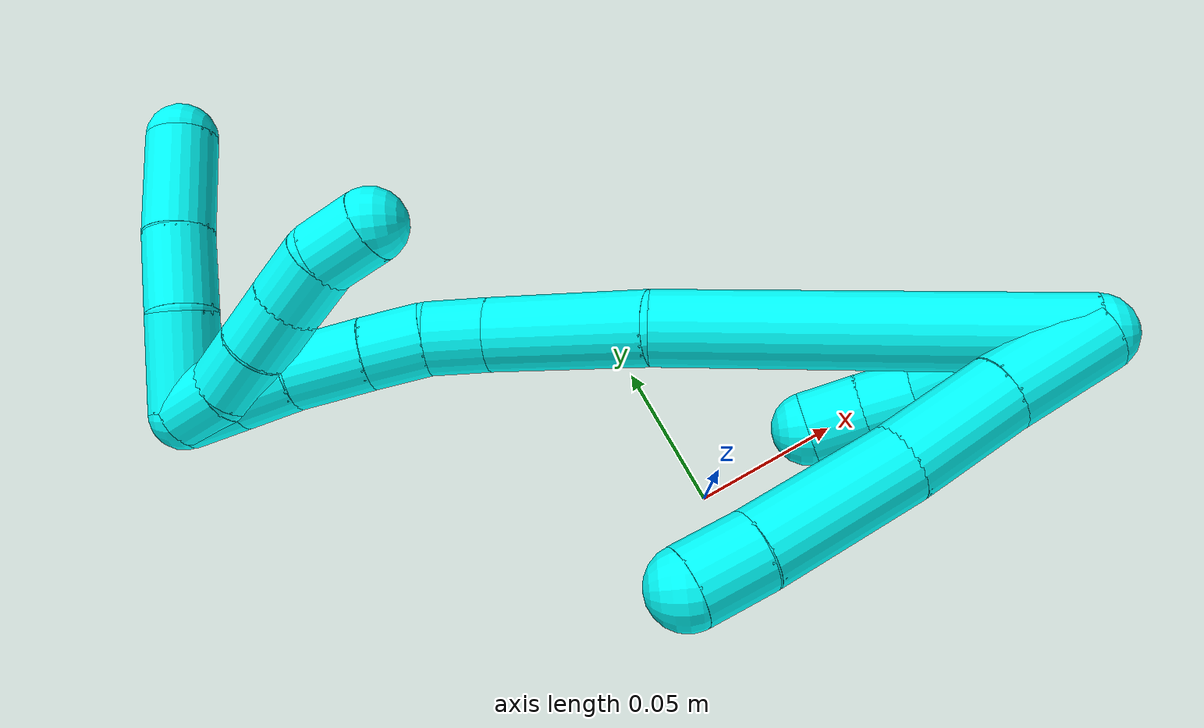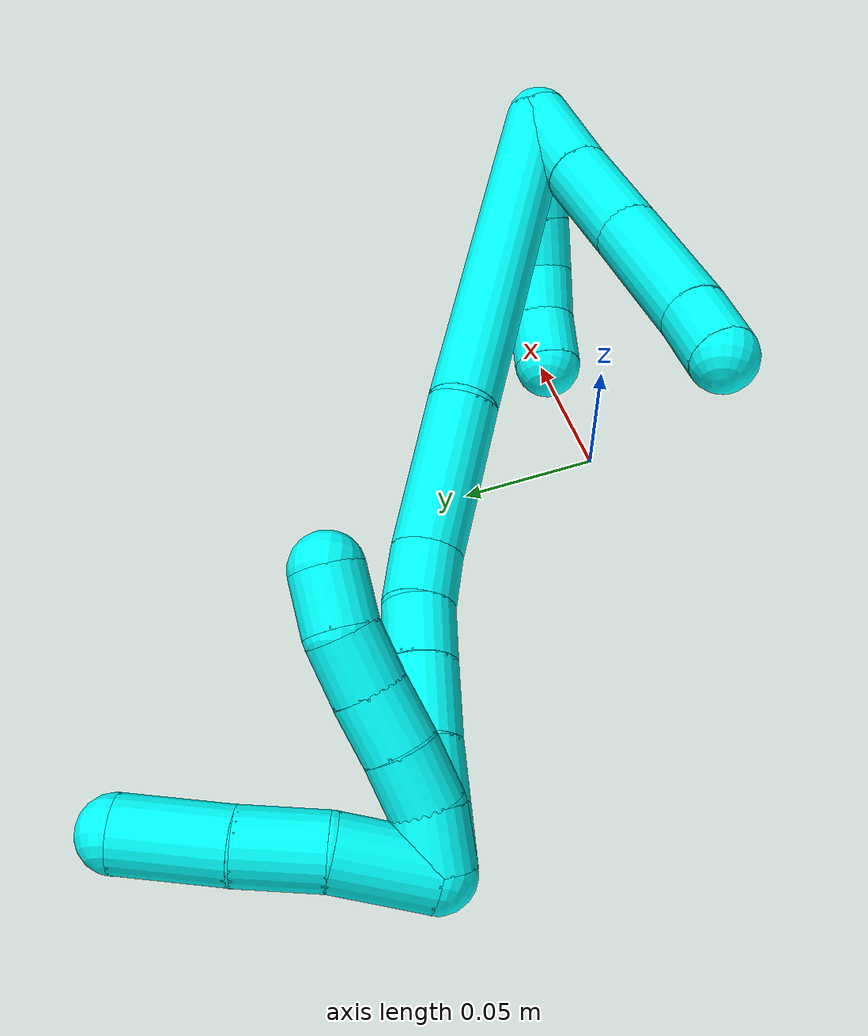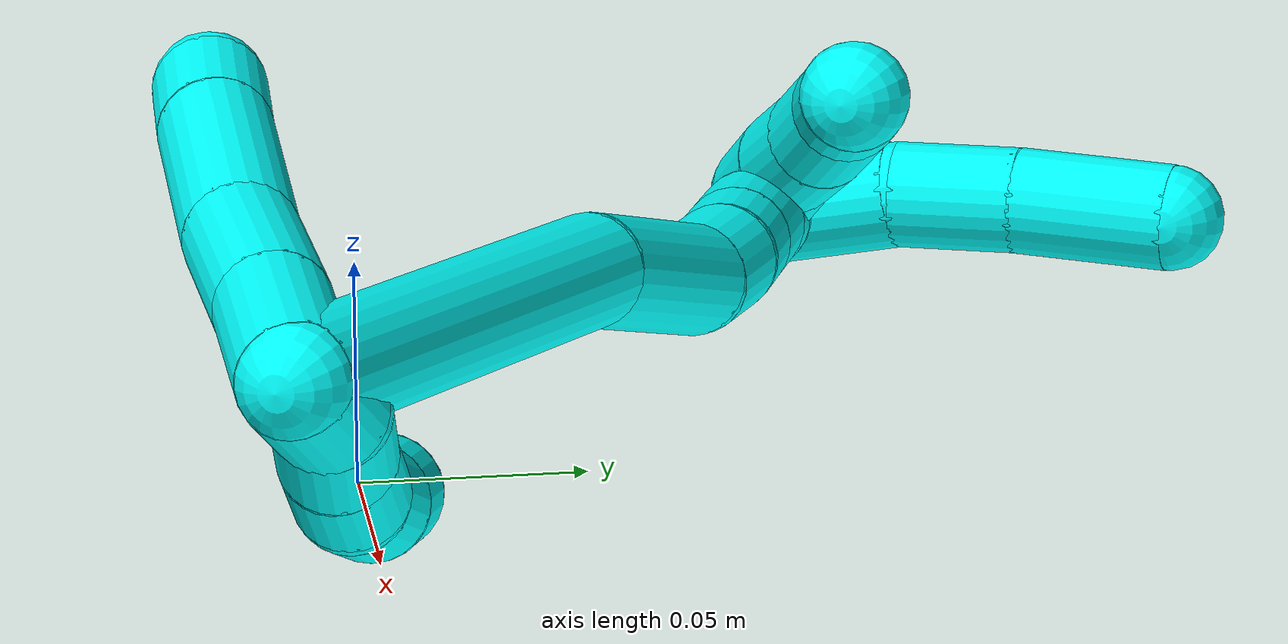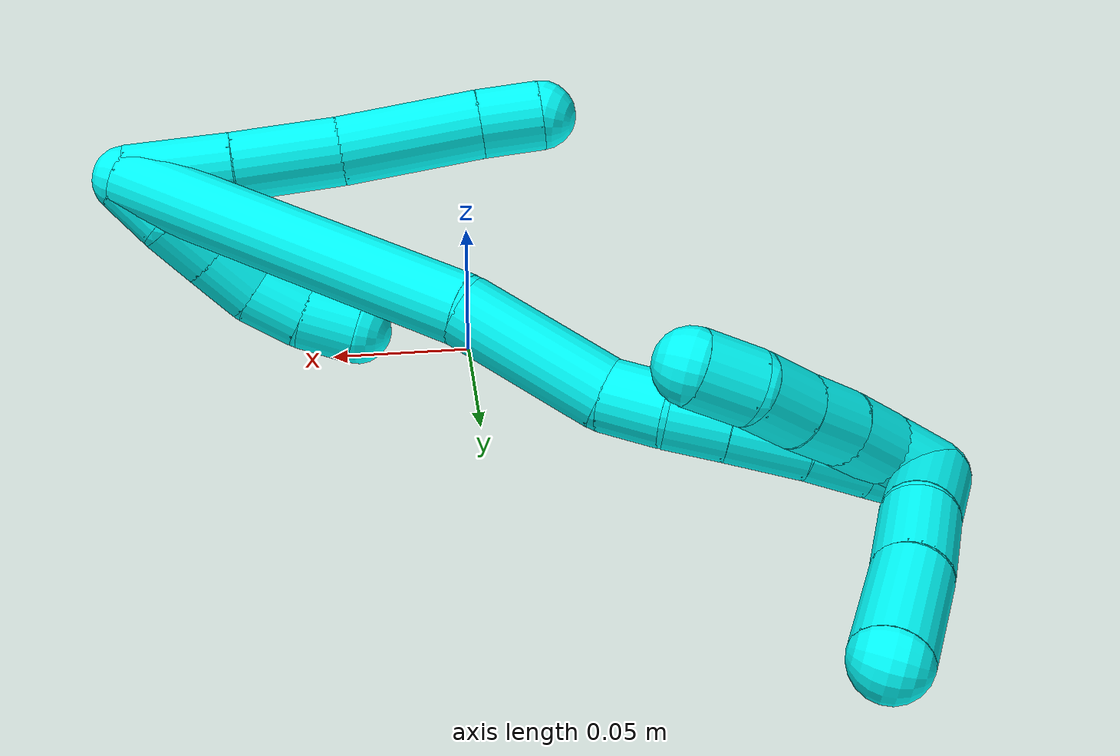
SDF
<sdf version="1.7">
 <world name="default">
  <model name="3">
   <static>0</static>
   <link name="3">
    <collision name="collision-cylinder-e_1_2_8">
     <pose>0.003934 -0.008045 0.016584 0.451659 0.210285 0.048482</pose>
     <geometry><cylinder><radius>0.0125</radius><length>0.037695</length></cylinder></geometry>
     <surface>
      <friction><ode><mu>1.16</mu><mu2>1.16</mu2><slip1>0</slip1><slip2>0</slip2></ode></friction>
      <contact><ode><kp>1e+06</kp><kd>1</kd><max_vel>0</max_vel><min_depth>0.001</min_depth></ode></contact>
     </surface>
    </collision>
    <visual name="visual-cylinder-e_1_2_8">
     <pose>0.003934 -0.008045 0.016584 0.451659 0.210285 0.048482</pose>
     <geometry><cylinder><radius>0.0125</radius><length>0.037695</length></cylinder></geometry>
     <material><ambient>0.003922 1 0.996078 1</ambient></material>
    </visual>
    <collision name="collision-cylinder-e_2_8_9">
     <pose>0.012017 -0.025111 0.049688 0.499846 0.216963 0.055586</pose>
     <geometry><cylinder><radius>0.0125</radius><length>0.038548</length></cylinder></geometry>
     <surface>
      <friction><ode><mu>1.16</mu><mu2>1.16</mu2><slip1>0</slip1><slip2>0</slip2></ode></friction>
      <contact><ode><kp>1e+06</kp><kd>1</kd><max_vel>0</max_vel><min_depth>0.001</min_depth></ode></contact>
     </surface>
    </collision>
    <visual name="visual-cylinder-e_2_8_9">
     <pose>0.012017 -0.025111 0.049688 0.499846 0.216963 0.055586</pose>
     <geometry><cylinder><radius>0.0125</radius><length>0.038548</length></cylinder></geometry>
     <material><ambient>0.003922 1 0.996078 1</ambient></material>
    </visual>
    <collision name="collision-cylinder-e_3_9_10">
     <pose>0.02354 -0.044507 0.088492 0.435685 0.291413 0.064943</pose>
     <geometry><cylinder><radius>0.0125</radius><length>0.051327</length></cylinder></geometry>
     <surface>
      <friction><ode><mu>1.16</mu><mu2>1.16</mu2><slip1>0</slip1><slip2>0</slip2></ode></friction>
      <contact><ode><kp>1e+06</kp><kd>1</kd><max_vel>0</max_vel><min_depth>0.001</min_depth></ode></contact>
     </surface>
    </collision>
    <visual name="visual-cylinder-e_3_9_10">
     <pose>0.02354 -0.044507 0.088492 0.435685 0.291413 0.064943</pose>
     <geometry><cylinder><radius>0.0125</radius><length>0.051327</length></cylinder></geometry>
     <material><ambient>0.003922 1 0.996078 1</ambient></material>
    </visual>
    <collision name="collision-cylinder-e_4_10_6">
     <pose>0.033779 -0.058981 0.120815 0.38778 0.258403 0.051012</pose>
     <geometry><cylinder><radius>0.0125</radius><length>0.022429</length></cylinder></geometry>
     <surface>
      <friction><ode><mu>1.16</mu><mu2>1.16</mu2><slip1>0</slip1><slip2>0</slip2></ode></friction>
      <contact><ode><kp>1e+06</kp><kd>1</kd><max_vel>0</max_vel><min_depth>0.001</min_depth></ode></contact>
     </surface>
    </collision>
    <visual name="visual-cylinder-e_4_10_6">
     <pose>0.033779 -0.058981 0.120815 0.38778 0.258403 0.051012</pose>
     <geometry><cylinder><radius>0.0125</radius><length>0.022429</length></cylinder></geometry>
     <material><ambient>0.003922 1 0.996078 1</ambient></material>
    </visual>
    <collision name="collision-cylinder-e_1_2_11">
     <pose>-0.005438 -5.5e-05 0.008392 0.006612 -0.574912 -0.001955</pose>
     <geometry><cylinder><radius>0.0125</radius><length>0.02</length></cylinder></geometry>
     <surface>
      <friction><ode><mu>1.16</mu><mu2>1.16</mu2><slip1>0</slip1><slip2>0</slip2></ode></friction>
      <contact><ode><kp>1e+06</kp><kd>1</kd><max_vel>0</max_vel><min_depth>0.001</min_depth></ode></contact>
     </surface>
    </collision>
    <visual name="visual-cylinder-e_1_2_11">
     <pose>-0.005438 -5.5e-05 0.008392 0.006612 -0.574912 -0.001955</pose>
     <geometry><cylinder><radius>0.0125</radius><length>0.02</length></cylinder></geometry>
     <material><ambient>0.003922 1 0.996078 1</ambient></material>
    </visual>
    <collision name="collision-cylinder-e_2_11_12">
     <pose>-0.016912 -0.002695 0.024326 0.330094 -0.648122 -0.111781</pose>
     <geometry><cylinder><radius>0.0125</radius><length>0.02</length></cylinder></geometry>
     <surface>
      <friction><ode><mu>1.16</mu><mu2>1.16</mu2><slip1>0</slip1><slip2>0</slip2></ode></friction>
      <contact><ode><kp>1e+06</kp><kd>1</kd><max_vel>0</max_vel><min_depth>0.001</min_depth></ode></contact>
     </surface>
    </collision>
    <visual name="visual-cylinder-e_2_11_12">
     <pose>-0.016912 -0.002695 0.024326 0.330094 -0.648122 -0.111781</pose>
     <geometry><cylinder><radius>0.0125</radius><length>0.02</length></cylinder></geometry>
     <material><ambient>0.003922 1 0.996078 1</ambient></material>
    </visual>
    <collision name="collision-cylinder-e_3_12_13">
     <pose>-0.028629 -0.007243 0.039861 0.240903 -0.604063 -0.075386</pose>
     <geometry><cylinder><radius>0.0125</radius><length>0.02</length></cylinder></geometry>
     <surface>
      <friction><ode><mu>1.16</mu><mu2>1.16</mu2><slip1>0</slip1><slip2>0</slip2></ode></friction>
      <contact><ode><kp>1e+06</kp><kd>1</kd><max_vel>0</max_vel><min_depth>0.001</min_depth></ode></contact>
     </surface>
    </collision>
    <visual name="visual-cylinder-e_3_12_13">
     <pose>-0.028629 -0.007243 0.039861 0.240903 -0.604063 -0.075386</pose>
     <geometry><cylinder><radius>0.0125</radius><length>0.02</length></cylinder></geometry>
     <material><ambient>0.003922 1 0.996078 1</ambient></material>
    </visual>
    <collision name="collision-cylinder-e_4_13_14">
     <pose>-0.037412 -0.010687 0.057244 0.156378 -0.31556 -0.02493</pose>
     <geometry><cylinder><radius>0.0125</radius><length>0.02</length></cylinder></geometry>
     <surface>
      <friction><ode><mu>1.16</mu><mu2>1.16</mu2><slip1>0</slip1><slip2>0</slip2></ode></friction>
      <contact><ode><kp>1e+06</kp><kd>1</kd><max_vel>0</max_vel><min_depth>0.001</min_depth></ode></contact>
     </surface>
    </collision>
    <visual name="visual-cylinder-e_4_13_14">
     <pose>-0.037412 -0.010687 0.057244 0.156378 -0.31556 -0.02493</pose>
     <geometry><cylinder><radius>0.0125</radius><length>0.02</length></cylinder></geometry>
     <material><ambient>0.003922 1 0.996078 1</ambient></material>
    </visual>
    <collision name="collision-cylinder-e_5_14_5">
     <pose>-0.041758 -0.014187 0.076349 0.204962 -0.124496 -0.01282</pose>
     <geometry><cylinder><radius>0.0125</radius><length>0.02</length></cylinder></geometry>
     <surface>
      <friction><ode><mu>1.16</mu><mu2>1.16</mu2><slip1>0</slip1><slip2>0</slip2></ode></friction>
      <contact><ode><kp>1e+06</kp><kd>1</kd><max_vel>0</max_vel><min_depth>0.001</min_depth></ode></contact>
     </surface>
    </collision>
    <visual name="visual-cylinder-e_5_14_5">
     <pose>-0.041758 -0.014187 0.076349 0.204962 -0.124496 -0.01282</pose>
     <geometry><cylinder><radius>0.0125</radius><length>0.02</length></cylinder></geometry>
     <material><ambient>0.003922 1 0.996078 1</ambient></material>
    </visual>
    <collision name="collision-cylinder-e_1_2_15">
     <pose>-0.003405 0.008809 0.067297 -0.130157 -0.05013 0.003268</pose>
     <geometry><cylinder><radius>0.0125</radius><length>0.135913</length></cylinder></geometry>
     <surface>
      <friction><ode><mu>1.16</mu><mu2>1.16</mu2><slip1>0</slip1><slip2>0</slip2></ode></friction>
      <contact><ode><kp>1e+06</kp><kd>1</kd><max_vel>0</max_vel><min_depth>0.001</min_depth></ode></contact>
     </surface>
    </collision>
    <visual name="visual-cylinder-e_1_2_15">
     <pose>-0.003405 0.008809 0.067297 -0.130157 -0.05013 0.003268</pose>
     <geometry><cylinder><radius>0.0125</radius><length>0.135913</length></cylinder></geometry>
     <material><ambient>0.003922 1 0.996078 1</ambient></material>
    </visual>
    <collision name="collision-cylinder-e_2_15_16">
     <pose>-0.013566 0.020593 0.161271 -0.111063 -0.246543 0.013775</pose>
     <geometry><cylinder><radius>0.0125</radius><length>0.055359</length></cylinder></geometry>
     <surface>
      <friction><ode><mu>1.16</mu><mu2>1.16</mu2><slip1>0</slip1><slip2>0</slip2></ode></friction>
      <contact><ode><kp>1e+06</kp><kd>1</kd><max_vel>0</max_vel><min_depth>0.001</min_depth></ode></contact>
     </surface>
    </collision>
    <visual name="visual-cylinder-e_2_15_16">
     <pose>-0.013566 0.020593 0.161271 -0.111063 -0.246543 0.013775</pose>
     <geometry><cylinder><radius>0.0125</radius><length>0.055359</length></cylinder></geometry>
     <material><ambient>0.003922 1 0.996078 1</ambient></material>
    </visual>
    <collision name="collision-cylinder-e_3_16_17">
     <pose>-0.020083 0.023989 0.198537 -0.039705 0.022498 -0.000447</pose>
     <geometry><cylinder><radius>0.0125</radius><length>0.021198</length></cylinder></geometry>
     <surface>
      <friction><ode><mu>1.16</mu><mu2>1.16</mu2><slip1>0</slip1><slip2>0</slip2></ode></friction>
      <contact><ode><kp>1e+06</kp><kd>1</kd><max_vel>0</max_vel><min_depth>0.001</min_depth></ode></contact>
     </surface>
    </collision>
    <visual name="visual-cylinder-e_3_16_17">
     <pose>-0.020083 0.023989 0.198537 -0.039705 0.022498 -0.000447</pose>
     <geometry><cylinder><radius>0.0125</radius><length>0.021198</length></cylinder></geometry>
     <material><ambient>0.003922 1 0.996078 1</ambient></material>
    </visual>
    <collision name="collision-cylinder-e_4_17_18">
     <pose>-0.019971 0.023019 0.21929 0.135939 -0.012382 -0.000843</pose>
     <geometry><cylinder><radius>0.0125</radius><length>0.020521</length></cylinder></geometry>
     <surface>
      <friction><ode><mu>1.16</mu><mu2>1.16</mu2><slip1>0</slip1><slip2>0</slip2></ode></friction>
      <contact><ode><kp>1e+06</kp><kd>1</kd><max_vel>0</max_vel><min_depth>0.001</min_depth></ode></contact>
     </surface>
    </collision>
    <visual name="visual-cylinder-e_4_17_18">
     <pose>-0.019971 0.023019 0.21929 0.135939 -0.012382 -0.000843</pose>
     <geometry><cylinder><radius>0.0125</radius><length>0.020521</length></cylinder></geometry>
     <material><ambient>0.003922 1 0.996078 1</ambient></material>
    </visual>
    <collision name="collision-cylinder-e_5_18_19">
     <pose>-0.020562 0.019618 0.242553 0.152339 -0.034949 -0.002667</pose>
     <geometry><cylinder><radius>0.0125</radius><length>0.026519</length></cylinder></geometry>
     <surface>
      <friction><ode><mu>1.16</mu><mu2>1.16</mu2><slip1>0</slip1><slip2>0</slip2></ode></friction>
      <contact><ode><kp>1e+06</kp><kd>1</kd><max_vel>0</max_vel><min_depth>0.001</min_depth></ode></contact>
     </surface>
    </collision>
    <visual name="visual-cylinder-e_5_18_19">
     <pose>-0.020562 0.019618 0.242553 0.152339 -0.034949 -0.002667</pose>
     <geometry><cylinder><radius>0.0125</radius><length>0.026519</length></cylinder></geometry>
     <material><ambient>0.003922 1 0.996078 1</ambient></material>
    </visual>
    <collision name="collision-cylinder-e_6_19_20">
     <pose>-0.022307 0.015439 0.265508 0.21646 -0.12638 -0.01375</pose>
     <geometry><cylinder><radius>0.0125</radius><length>0.020347</length></cylinder></geometry>
     <surface>
      <friction><ode><mu>1.16</mu><mu2>1.16</mu2><slip1>0</slip1><slip2>0</slip2></ode></friction>
      <contact><ode><kp>1e+06</kp><kd>1</kd><max_vel>0</max_vel><min_depth>0.001</min_depth></ode></contact>
     </surface>
    </collision>
    <visual name="visual-cylinder-e_6_19_20">
     <pose>-0.022307 0.015439 0.265508 0.21646 -0.12638 -0.01375</pose>
     <geometry><cylinder><radius>0.0125</radius><length>0.020347</length></cylinder></geometry>
     <material><ambient>0.003922 1 0.996078 1</ambient></material>
    </visual>
    <collision name="collision-cylinder-e_7_20_1">
     <pose>-0.02476 0.011122 0.285134 0.216626 -0.116486 -0.012681</pose>
     <geometry><cylinder><radius>0.0125</radius><length>0.020142</length></cylinder></geometry>
     <surface>
      <friction><ode><mu>1.16</mu><mu2>1.16</mu2><slip1>0</slip1><slip2>0</slip2></ode></friction>
      <contact><ode><kp>1e+06</kp><kd>1</kd><max_vel>0</max_vel><min_depth>0.001</min_depth></ode></contact>
     </surface>
    </collision>
    <visual name="visual-cylinder-e_7_20_1">
     <pose>-0.02476 0.011122 0.285134 0.216626 -0.116486 -0.012681</pose>
     <geometry><cylinder><radius>0.0125</radius><length>0.020142</length></cylinder></geometry>
     <material><ambient>0.003922 1 0.996078 1</ambient></material>
    </visual>
    <collision name="collision-cylinder-e_1_1_21">
     <pose>-0.021883 0.011929 0.28625 -2.81227 0.416737 -1.80945</pose>
     <geometry><cylinder><radius>0.0125</radius><length>0.02</length></cylinder></geometry>
     <surface>
      <friction><ode><mu>1.16</mu><mu2>1.16</mu2><slip1>0</slip1><slip2>0</slip2></ode></friction>
      <contact><ode><kp>1e+06</kp><kd>1</kd><max_vel>0</max_vel><min_depth>0.001</min_depth></ode></contact>
     </surface>
    </collision>
    <visual name="visual-cylinder-e_1_1_21">
     <pose>-0.021883 0.011929 0.28625 -2.81227 0.416737 -1.80945</pose>
     <geometry><cylinder><radius>0.0125</radius><length>0.02</length></cylinder></geometry>
     <material><ambient>0.003922 1 0.996078 1</ambient></material>
    </visual>
    <collision name="collision-cylinder-e_2_21_22">
     <pose>-0.013148 0.020345 0.270653 -2.47539 0.487854 -1.24715</pose>
     <geometry><cylinder><radius>0.0125</radius><length>0.02</length></cylinder></geometry>
     <surface>
      <friction><ode><mu>1.16</mu><mu2>1.16</mu2><slip1>0</slip1><slip2>0</slip2></ode></friction>
      <contact><ode><kp>1e+06</kp><kd>1</kd><max_vel>0</max_vel><min_depth>0.001</min_depth></ode></contact>
     </surface>
    </collision>
    <visual name="visual-cylinder-e_2_21_22">
     <pose>-0.013148 0.020345 0.270653 -2.47539 0.487854 -1.24715</pose>
     <geometry><cylinder><radius>0.0125</radius><length>0.02</length></cylinder></geometry>
     <material><ambient>0.003922 1 0.996078 1</ambient></material>
    </visual>
    <collision name="collision-cylinder-e_3_22_23">
     <pose>-0.004424 0.031711 0.256721 -2.43982 0.415453 -1.04489</pose>
     <geometry><cylinder><radius>0.0125</radius><length>0.02</length></cylinder></geometry>
     <surface>
      <friction><ode><mu>1.16</mu><mu2>1.16</mu2><slip1>0</slip1><slip2>0</slip2></ode></friction>
      <contact><ode><kp>1e+06</kp><kd>1</kd><max_vel>0</max_vel><min_depth>0.001</min_depth></ode></contact>
     </surface>
    </collision>
    <visual name="visual-cylinder-e_3_22_23">
     <pose>-0.004424 0.031711 0.256721 -2.43982 0.415453 -1.04489</pose>
     <geometry><cylinder><radius>0.0125</radius><length>0.02</length></cylinder></geometry>
     <material><ambient>0.003922 1 0.996078 1</ambient></material>
    </visual>
    <collision name="collision-cylinder-e_4_23_24">
     <pose>0.004079 0.043105 0.242668 -2.48125 0.463131 -1.20528</pose>
     <geometry><cylinder><radius>0.0125</radius><length>0.02</length></cylinder></geometry>
     <surface>
      <friction><ode><mu>1.16</mu><mu2>1.16</mu2><slip1>0</slip1><slip2>0</slip2></ode></friction>
      <contact><ode><kp>1e+06</kp><kd>1</kd><max_vel>0</max_vel><min_depth>0.001</min_depth></ode></contact>
     </surface>
    </collision>
    <visual name="visual-cylinder-e_4_23_24">
     <pose>0.004079 0.043105 0.242668 -2.48125 0.463131 -1.20528</pose>
     <geometry><cylinder><radius>0.0125</radius><length>0.02</length></cylinder></geometry>
     <material><ambient>0.003922 1 0.996078 1</ambient></material>
    </visual>
    <collision name="collision-cylinder-e_5_24_4">
     <pose>0.011273 0.052228 0.226694 -2.75412 0.276076 -1.23225</pose>
     <geometry><cylinder><radius>0.0125</radius><length>0.02</length></cylinder></geometry>
     <surface>
      <friction><ode><mu>1.16</mu><mu2>1.16</mu2><slip1>0</slip1><slip2>0</slip2></ode></friction>
      <contact><ode><kp>1e+06</kp><kd>1</kd><max_vel>0</max_vel><min_depth>0.001</min_depth></ode></contact>
     </surface>
    </collision>
    <visual name="visual-cylinder-e_5_24_4">
     <pose>0.011273 0.052228 0.226694 -2.75412 0.276076 -1.23225</pose>
     <geometry><cylinder><radius>0.0125</radius><length>0.02</length></cylinder></geometry>
     <material><ambient>0.003922 1 0.996078 1</ambient></material>
    </visual>
    <collision name="collision-cylinder-e_1_1_25">
     <pose>-0.024299 0.025837 0.294255 -1.60918 0.096389 -0.100156</pose>
     <geometry><cylinder><radius>0.0125</radius><length>0.033913</length></cylinder></geometry>
     <surface>
      <friction><ode><mu>1.16</mu><mu2>1.16</mu2><slip1>0</slip1><slip2>0</slip2></ode></friction>
      <contact><ode><kp>1e+06</kp><kd>1</kd><max_vel>0</max_vel><min_depth>0.001</min_depth></ode></contact>
     </surface>
    </collision>
    <visual name="visual-cylinder-e_1_1_25">
     <pose>-0.024299 0.025837 0.294255 -1.60918 0.096389 -0.100156</pose>
     <geometry><cylinder><radius>0.0125</radius><length>0.033913</length></cylinder></geometry>
     <material><ambient>0.003922 1 0.996078 1</ambient></material>
    </visual>
    <collision name="collision-cylinder-e_2_25_26">
     <pose>-0.024103 0.057236 0.294198 -1.53021 -0.098418 0.094509</pose>
     <geometry><cylinder><radius>0.0125</radius><length>0.029232</length></cylinder></geometry>
     <surface>
      <friction><ode><mu>1.16</mu><mu2>1.16</mu2><slip1>0</slip1><slip2>0</slip2></ode></friction>
      <contact><ode><kp>1e+06</kp><kd>1</kd><max_vel>0</max_vel><min_depth>0.001</min_depth></ode></contact>
     </surface>
    </collision>
    <visual name="visual-cylinder-e_2_25_26">
     <pose>-0.024103 0.057236 0.294198 -1.53021 -0.098418 0.094509</pose>
     <geometry><cylinder><radius>0.0125</radius><length>0.029232</length></cylinder></geometry>
     <material><ambient>0.003922 1 0.996078 1</ambient></material>
    </visual>
    <collision name="collision-cylinder-e_3_26_3">
     <pose>-0.028231 0.089995 0.294436 -1.59007 -0.146636 0.149479</pose>
     <geometry><cylinder><radius>0.0125</radius><length>0.036855</length></cylinder></geometry>
     <surface>
      <friction><ode><mu>1.16</mu><mu2>1.16</mu2><slip1>0</slip1><slip2>0</slip2></ode></friction>
      <contact><ode><kp>1e+06</kp><kd>1</kd><max_vel>0</max_vel><min_depth>0.001</min_depth></ode></contact>
     </surface>
    </collision>
    <visual name="visual-cylinder-e_3_26_3">
     <pose>-0.028231 0.089995 0.294436 -1.59007 -0.146636 0.149479</pose>
     <geometry><cylinder><radius>0.0125</radius><length>0.036855</length></cylinder></geometry>
     <material><ambient>0.003922 1 0.996078 1</ambient></material>
    </visual>
    <collision name="collision-sphere-3">
     <pose>-0.030924 0.108222 0.294085 0 -0 0</pose>
     <geometry><sphere><radius>0.0125</radius></sphere></geometry>
     <surface>
      <friction><ode><mu>1.16</mu><mu2>1.16</mu2><slip1>0</slip1><slip2>0</slip2></ode></friction>
      <contact><ode><kp>1e+06</kp><kd>1</kd><max_vel>0</max_vel><min_depth>0.001</min_depth></ode></contact>
     </surface>
    </collision>
    <visual name="visual-sphere-3">
     <pose>-0.030924 0.108222 0.294085 0 -0 0</pose>
     <geometry><sphere><radius>0.0125</radius></sphere></geometry>
     <material><ambient>0.003922 1 0.996078 1</ambient></material>
    </visual>
    <collision name="collision-sphere-26">
     <pose>-0.025539 0.071769 0.294788 0 -0 0</pose>
     <geometry><sphere><radius>0.0125</radius></sphere></geometry>
     <surface>
      <friction><ode><mu>1.16</mu><mu2>1.16</mu2><slip1>0</slip1><slip2>0</slip2></ode></friction>
      <contact><ode><kp>1e+06</kp><kd>1</kd><max_vel>0</max_vel><min_depth>0.001</min_depth></ode></contact>
     </surface>
    </collision>
    <visual name="visual-sphere-26">
     <pose>-0.025539 0.071769 0.294788 0 -0 0</pose>
     <geometry><sphere><radius>0.0125</radius></sphere></geometry>
     <material><ambient>0.003922 1 0.996078 1</ambient></material>
    </visual>
    <collision name="collision-sphere-25">
     <pose>-0.022667 0.042703 0.293607 0 -0 0</pose>
     <geometry><sphere><radius>0.0125</radius></sphere></geometry>
     <surface>
      <friction><ode><mu>1.16</mu><mu2>1.16</mu2><slip1>0</slip1><slip2>0</slip2></ode></friction>
      <contact><ode><kp>1e+06</kp><kd>1</kd><max_vel>0</max_vel><min_depth>0.001</min_depth></ode></contact>
     </surface>
    </collision>
    <visual name="visual-sphere-25">
     <pose>-0.022667 0.042703 0.293607 0 -0 0</pose>
     <geometry><sphere><radius>0.0125</radius></sphere></geometry>
     <material><ambient>0.003922 1 0.996078 1</ambient></material>
    </visual>
    <collision name="collision-sphere-4">
     <pose>0.013998 0.055864 0.217786 0 -0 0</pose>
     <geometry><sphere><radius>0.0125</radius></sphere></geometry>
     <surface>
      <friction><ode><mu>1.16</mu><mu2>1.16</mu2><slip1>0</slip1><slip2>0</slip2></ode></friction>
      <contact><ode><kp>1e+06</kp><kd>1</kd><max_vel>0</max_vel><min_depth>0.001</min_depth></ode></contact>
     </surface>
    </collision>
    <visual name="visual-sphere-4">
     <pose>0.013998 0.055864 0.217786 0 -0 0</pose>
     <geometry><sphere><radius>0.0125</radius></sphere></geometry>
     <material><ambient>0.003922 1 0.996078 1</ambient></material>
    </visual>
    <collision name="collision-sphere-24">
     <pose>0.008547 0.048593 0.235602 0 -0 0</pose>
     <geometry><sphere><radius>0.0125</radius></sphere></geometry>
     <surface>
      <friction><ode><mu>1.16</mu><mu2>1.16</mu2><slip1>0</slip1><slip2>0</slip2></ode></friction>
      <contact><ode><kp>1e+06</kp><kd>1</kd><max_vel>0</max_vel><min_depth>0.001</min_depth></ode></contact>
     </surface>
    </collision>
    <visual name="visual-sphere-24">
     <pose>0.008547 0.048593 0.235602 0 -0 0</pose>
     <geometry><sphere><radius>0.0125</radius></sphere></geometry>
     <material><ambient>0.003922 1 0.996078 1</ambient></material>
    </visual>
    <collision name="collision-sphere-23">
     <pose>-0.000388 0.037617 0.249734 0 -0 0</pose>
     <geometry><sphere><radius>0.0125</radius></sphere></geometry>
     <surface>
      <friction><ode><mu>1.16</mu><mu2>1.16</mu2><slip1>0</slip1><slip2>0</slip2></ode></friction>
      <contact><ode><kp>1e+06</kp><kd>1</kd><max_vel>0</max_vel><min_depth>0.001</min_depth></ode></contact>
     </surface>
    </collision>
    <visual name="visual-sphere-23">
     <pose>-0.000388 0.037617 0.249734 0 -0 0</pose>
     <geometry><sphere><radius>0.0125</radius></sphere></geometry>
     <material><ambient>0.003922 1 0.996078 1</ambient></material>
    </visual>
    <collision name="collision-sphere-22">
     <pose>-0.00846 0.025804 0.263708 0 -0 0</pose>
     <geometry><sphere><radius>0.0125</radius></sphere></geometry>
     <surface>
      <friction><ode><mu>1.16</mu><mu2>1.16</mu2><slip1>0</slip1><slip2>0</slip2></ode></friction>
      <contact><ode><kp>1e+06</kp><kd>1</kd><max_vel>0</max_vel><min_depth>0.001</min_depth></ode></contact>
     </surface>
    </collision>
    <visual name="visual-sphere-22">
     <pose>-0.00846 0.025804 0.263708 0 -0 0</pose>
     <geometry><sphere><radius>0.0125</radius></sphere></geometry>
     <material><ambient>0.003922 1 0.996078 1</ambient></material>
    </visual>
    <collision name="collision-sphere-21">
     <pose>-0.017835 0.014886 0.277597 0 -0 0</pose>
     <geometry><sphere><radius>0.0125</radius></sphere></geometry>
     <surface>
      <friction><ode><mu>1.16</mu><mu2>1.16</mu2><slip1>0</slip1><slip2>0</slip2></ode></friction>
      <contact><ode><kp>1e+06</kp><kd>1</kd><max_vel>0</max_vel><min_depth>0.001</min_depth></ode></contact>
     </surface>
    </collision>
    <visual name="visual-sphere-21">
     <pose>-0.017835 0.014886 0.277597 0 -0 0</pose>
     <geometry><sphere><radius>0.0125</radius></sphere></geometry>
     <material><ambient>0.003922 1 0.996078 1</ambient></material>
    </visual>
    <collision name="collision-sphere-1">
     <pose>-0.025931 0.008972 0.294903 0 -0 0</pose>
     <geometry><sphere><radius>0.0125</radius></sphere></geometry>
     <surface>
      <friction><ode><mu>1.16</mu><mu2>1.16</mu2><slip1>0</slip1><slip2>0</slip2></ode></friction>
      <contact><ode><kp>1e+06</kp><kd>1</kd><max_vel>0</max_vel><min_depth>0.001</min_depth></ode></contact>
     </surface>
    </collision>
    <visual name="visual-sphere-1">
     <pose>-0.025931 0.008972 0.294903 0 -0 0</pose>
     <geometry><sphere><radius>0.0125</radius></sphere></geometry>
     <material><ambient>0.003922 1 0.996078 1</ambient></material>
    </visual>
    <collision name="collision-sphere-11">
     <pose>-0.010875 -0.000111 0.016784 0 -0 0</pose>
     <geometry><sphere><radius>0.0125</radius></sphere></geometry>
     <surface>
      <friction><ode><mu>1.16</mu><mu2>1.16</mu2><slip1>0</slip1><slip2>0</slip2></ode></friction>
      <contact><ode><kp>1e+06</kp><kd>1</kd><max_vel>0</max_vel><min_depth>0.001</min_depth></ode></contact>
     </surface>
    </collision>
    <visual name="visual-sphere-11">
     <pose>-0.010875 -0.000111 0.016784 0 -0 0</pose>
     <geometry><sphere><radius>0.0125</radius></sphere></geometry>
     <material><ambient>0.003922 1 0.996078 1</ambient></material>
    </visual>
    <collision name="collision-sphere-6">
     <pose>0.036645 -0.063081 0.130852 0 -0 0</pose>
     <geometry><sphere><radius>0.0125</radius></sphere></geometry>
     <surface>
      <friction><ode><mu>1.16</mu><mu2>1.16</mu2><slip1>0</slip1><slip2>0</slip2></ode></friction>
      <contact><ode><kp>1e+06</kp><kd>1</kd><max_vel>0</max_vel><min_depth>0.001</min_depth></ode></contact>
     </surface>
    </collision>
    <visual name="visual-sphere-6">
     <pose>0.036645 -0.063081 0.130852 0 -0 0</pose>
     <geometry><sphere><radius>0.0125</radius></sphere></geometry>
     <material><ambient>0.003922 1 0.996078 1</ambient></material>
    </visual>
    <collision name="collision-sphere-10">
     <pose>0.030913 -0.054881 0.110778 0 -0 0</pose>
     <geometry><sphere><radius>0.0125</radius></sphere></geometry>
     <surface>
      <friction><ode><mu>1.16</mu><mu2>1.16</mu2><slip1>0</slip1><slip2>0</slip2></ode></friction>
      <contact><ode><kp>1e+06</kp><kd>1</kd><max_vel>0</max_vel><min_depth>0.001</min_depth></ode></contact>
     </surface>
    </collision>
    <visual name="visual-sphere-10">
     <pose>0.030913 -0.054881 0.110778 0 -0 0</pose>
     <geometry><sphere><radius>0.0125</radius></sphere></geometry>
     <material><ambient>0.003922 1 0.996078 1</ambient></material>
    </visual>
    <collision name="collision-sphere-9">
     <pose>0.016166 -0.034133 0.066207 0 -0 0</pose>
     <geometry><sphere><radius>0.0125</radius></sphere></geometry>
     <surface>
      <friction><ode><mu>1.16</mu><mu2>1.16</mu2><slip1>0</slip1><slip2>0</slip2></ode></friction>
      <contact><ode><kp>1e+06</kp><kd>1</kd><max_vel>0</max_vel><min_depth>0.001</min_depth></ode></contact>
     </surface>
    </collision>
    <visual name="visual-sphere-9">
     <pose>0.016166 -0.034133 0.066207 0 -0 0</pose>
     <geometry><sphere><radius>0.0125</radius></sphere></geometry>
     <material><ambient>0.003922 1 0.996078 1</ambient></material>
    </visual>
    <collision name="collision-sphere-2">
     <geometry><sphere><radius>0.0125</radius></sphere></geometry>
     <surface>
      <friction><ode><mu>1.16</mu><mu2>1.16</mu2><slip1>0</slip1><slip2>0</slip2></ode></friction>
      <contact><ode><kp>1e+06</kp><kd>1</kd><max_vel>0</max_vel><min_depth>0.001</min_depth></ode></contact>
     </surface>
    </collision>
    <visual name="visual-sphere-2">
     <geometry><sphere><radius>0.0125</radius></sphere></geometry>
     <material><ambient>0.003922 1 0.996078 1</ambient></material>
    </visual>
    <collision name="collision-sphere-19">
     <pose>-0.021025 0.017607 0.255651 0 -0 0</pose>
     <geometry><sphere><radius>0.0125</radius></sphere></geometry>
     <surface>
      <friction><ode><mu>1.16</mu><mu2>1.16</mu2><slip1>0</slip1><slip2>0</slip2></ode></friction>
      <contact><ode><kp>1e+06</kp><kd>1</kd><max_vel>0</max_vel><min_depth>0.001</min_depth></ode></contact>
     </surface>
    </collision>
    <visual name="visual-sphere-19">
     <pose>-0.021025 0.017607 0.255651 0 -0 0</pose>
     <geometry><sphere><radius>0.0125</radius></sphere></geometry>
     <material><ambient>0.003922 1 0.996078 1</ambient></material>
    </visual>
    <collision name="collision-sphere-8">
     <pose>0.007868 -0.01609 0.033168 0 -0 0</pose>
     <geometry><sphere><radius>0.0125</radius></sphere></geometry>
     <surface>
      <friction><ode><mu>1.16</mu><mu2>1.16</mu2><slip1>0</slip1><slip2>0</slip2></ode></friction>
      <contact><ode><kp>1e+06</kp><kd>1</kd><max_vel>0</max_vel><min_depth>0.001</min_depth></ode></contact>
     </surface>
    </collision>
    <visual name="visual-sphere-8">
     <pose>0.007868 -0.01609 0.033168 0 -0 0</pose>
     <geometry><sphere><radius>0.0125</radius></sphere></geometry>
     <material><ambient>0.003922 1 0.996078 1</ambient></material>
    </visual>
    <collision name="collision-sphere-12">
     <pose>-0.022949 -0.005279 0.031868 0 -0 0</pose>
     <geometry><sphere><radius>0.0125</radius></sphere></geometry>
     <surface>
      <friction><ode><mu>1.16</mu><mu2>1.16</mu2><slip1>0</slip1><slip2>0</slip2></ode></friction>
      <contact><ode><kp>1e+06</kp><kd>1</kd><max_vel>0</max_vel><min_depth>0.001</min_depth></ode></contact>
     </surface>
    </collision>
    <visual name="visual-sphere-12">
     <pose>-0.022949 -0.005279 0.031868 0 -0 0</pose>
     <geometry><sphere><radius>0.0125</radius></sphere></geometry>
     <material><ambient>0.003922 1 0.996078 1</ambient></material>
    </visual>
    <collision name="collision-sphere-13">
     <pose>-0.034309 -0.009206 0.047853 0 -0 0</pose>
     <geometry><sphere><radius>0.0125</radius></sphere></geometry>
     <surface>
      <friction><ode><mu>1.16</mu><mu2>1.16</mu2><slip1>0</slip1><slip2>0</slip2></ode></friction>
      <contact><ode><kp>1e+06</kp><kd>1</kd><max_vel>0</max_vel><min_depth>0.001</min_depth></ode></contact>
     </surface>
    </collision>
    <visual name="visual-sphere-13">
     <pose>-0.034309 -0.009206 0.047853 0 -0 0</pose>
     <geometry><sphere><radius>0.0125</radius></sphere></geometry>
     <material><ambient>0.003922 1 0.996078 1</ambient></material>
    </visual>
    <collision name="collision-sphere-14">
     <pose>-0.040516 -0.012167 0.066634 0 -0 0</pose>
     <geometry><sphere><radius>0.0125</radius></sphere></geometry>
     <surface>
      <friction><ode><mu>1.16</mu><mu2>1.16</mu2><slip1>0</slip1><slip2>0</slip2></ode></friction>
      <contact><ode><kp>1e+06</kp><kd>1</kd><max_vel>0</max_vel><min_depth>0.001</min_depth></ode></contact>
     </surface>
    </collision>
    <visual name="visual-sphere-14">
     <pose>-0.040516 -0.012167 0.066634 0 -0 0</pose>
     <geometry><sphere><radius>0.0125</radius></sphere></geometry>
     <material><ambient>0.003922 1 0.996078 1</ambient></material>
    </visual>
    <collision name="collision-sphere-5">
     <pose>-0.042999 -0.016206 0.086064 0 -0 0</pose>
     <geometry><sphere><radius>0.0125</radius></sphere></geometry>
     <surface>
      <friction><ode><mu>1.16</mu><mu2>1.16</mu2><slip1>0</slip1><slip2>0</slip2></ode></friction>
      <contact><ode><kp>1e+06</kp><kd>1</kd><max_vel>0</max_vel><min_depth>0.001</min_depth></ode></contact>
     </surface>
    </collision>
    <visual name="visual-sphere-5">
     <pose>-0.042999 -0.016206 0.086064 0 -0 0</pose>
     <geometry><sphere><radius>0.0125</radius></sphere></geometry>
     <material><ambient>0.003922 1 0.996078 1</ambient></material>
    </visual>
    <collision name="collision-sphere-15">
     <pose>-0.00681 0.017618 0.134594 0 -0 0</pose>
     <geometry><sphere><radius>0.0125</radius></sphere></geometry>
     <surface>
      <friction><ode><mu>1.16</mu><mu2>1.16</mu2><slip1>0</slip1><slip2>0</slip2></ode></friction>
      <contact><ode><kp>1e+06</kp><kd>1</kd><max_vel>0</max_vel><min_depth>0.001</min_depth></ode></contact>
     </surface>
    </collision>
    <visual name="visual-sphere-15">
     <pose>-0.00681 0.017618 0.134594 0 -0 0</pose>
     <geometry><sphere><radius>0.0125</radius></sphere></geometry>
     <material><ambient>0.003922 1 0.996078 1</ambient></material>
    </visual>
    <collision name="collision-sphere-16">
     <pose>-0.020321 0.023568 0.187949 0 -0 0</pose>
     <geometry><sphere><radius>0.0125</radius></sphere></geometry>
     <surface>
      <friction><ode><mu>1.16</mu><mu2>1.16</mu2><slip1>0</slip1><slip2>0</slip2></ode></friction>
      <contact><ode><kp>1e+06</kp><kd>1</kd><max_vel>0</max_vel><min_depth>0.001</min_depth></ode></contact>
     </surface>
    </collision>
    <visual name="visual-sphere-16">
     <pose>-0.020321 0.023568 0.187949 0 -0 0</pose>
     <geometry><sphere><radius>0.0125</radius></sphere></geometry>
     <material><ambient>0.003922 1 0.996078 1</ambient></material>
    </visual>
    <collision name="collision-sphere-17">
     <pose>-0.019844 0.024409 0.209125 0 -0 0</pose>
     <geometry><sphere><radius>0.0125</radius></sphere></geometry>
     <surface>
      <friction><ode><mu>1.16</mu><mu2>1.16</mu2><slip1>0</slip1><slip2>0</slip2></ode></friction>
      <contact><ode><kp>1e+06</kp><kd>1</kd><max_vel>0</max_vel><min_depth>0.001</min_depth></ode></contact>
     </surface>
    </collision>
    <visual name="visual-sphere-17">
     <pose>-0.019844 0.024409 0.209125 0 -0 0</pose>
     <geometry><sphere><radius>0.0125</radius></sphere></geometry>
     <material><ambient>0.003922 1 0.996078 1</ambient></material>
    </visual>
    <collision name="collision-sphere-18">
     <pose>-0.020098 0.021628 0.229455 0 -0 0</pose>
     <geometry><sphere><radius>0.0125</radius></sphere></geometry>
     <surface>
      <friction><ode><mu>1.16</mu><mu2>1.16</mu2><slip1>0</slip1><slip2>0</slip2></ode></friction>
      <contact><ode><kp>1e+06</kp><kd>1</kd><max_vel>0</max_vel><min_depth>0.001</min_depth></ode></contact>
     </surface>
    </collision>
    <visual name="visual-sphere-18">
     <pose>-0.020098 0.021628 0.229455 0 -0 0</pose>
     <geometry><sphere><radius>0.0125</radius></sphere></geometry>
     <material><ambient>0.003922 1 0.996078 1</ambient></material>
    </visual>
    <collision name="collision-sphere-20">
     <pose>-0.02359 0.013272 0.275365 0 -0 0</pose>
     <geometry><sphere><radius>0.0125</radius></sphere></geometry>
     <surface>
      <friction><ode><mu>1.16</mu><mu2>1.16</mu2><slip1>0</slip1><slip2>0</slip2></ode></friction>
      <contact><ode><kp>1e+06</kp><kd>1</kd><max_vel>0</max_vel><min_depth>0.001</min_depth></ode></contact>
     </surface>
    </collision>
    <visual name="visual-sphere-20">
     <pose>-0.02359 0.013272 0.275365 0 -0 0</pose>
     <geometry><sphere><radius>0.0125</radius></sphere></geometry>
     <material><ambient>0.003922 1 0.996078 1</ambient></material>
    </visual>
    <inertial>
     <pose>-0.008832 0.010471 0.151156 0 -0 0</pose>
     <mass>0.75</mass>
     <inertia>
      <ixx>0.000283</ixx>
      <ixy>0</ixy>
      <ixz>0</ixz>
      <iyy>0.000272</iyy>
      <iyz>0</iyz>
      <izz>1.1e-05</izz>
     </inertia>
    </inertial>
   </link>
   <pose>0.11895 -0.022199 0.065618 2.24979 -1.41073 -2.6737</pose>
  </model>
 </world>
</sdf>
